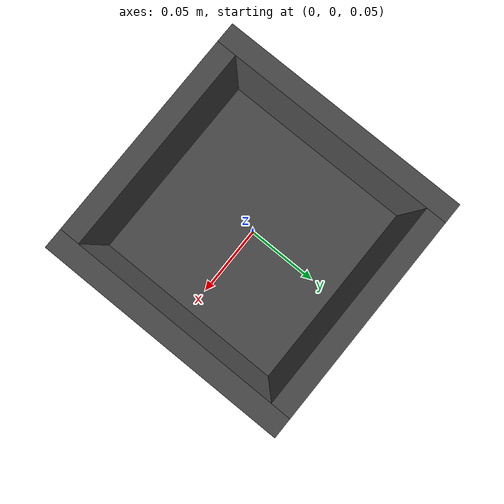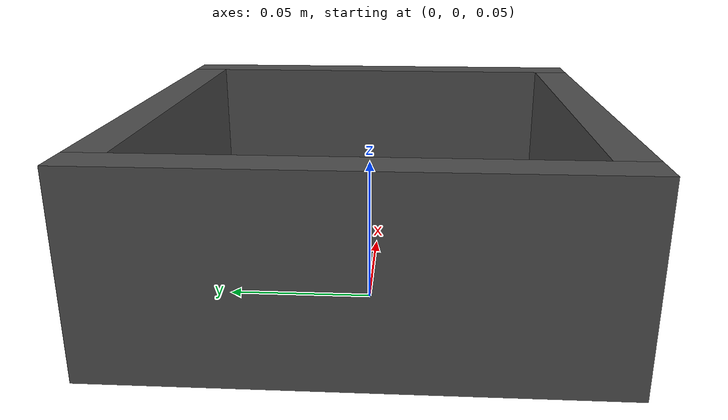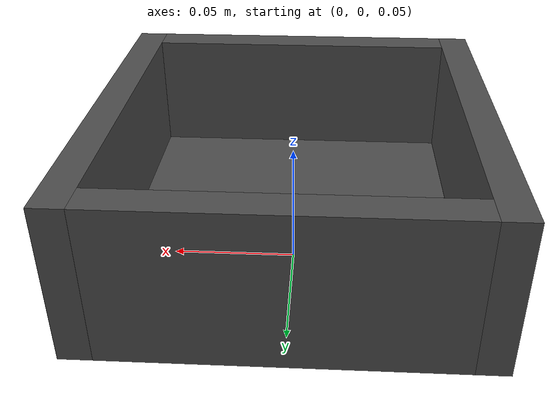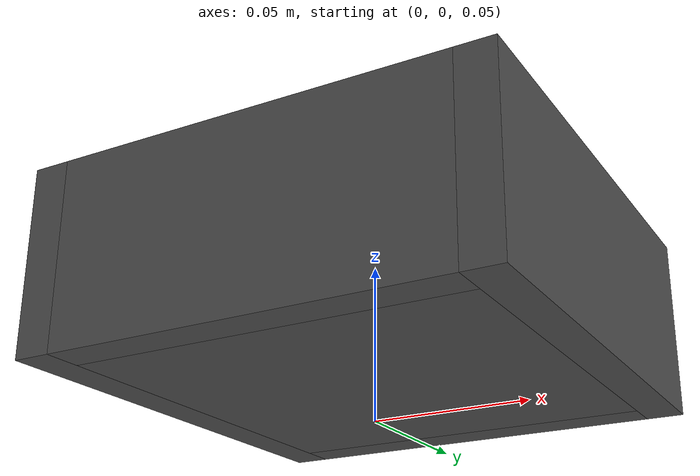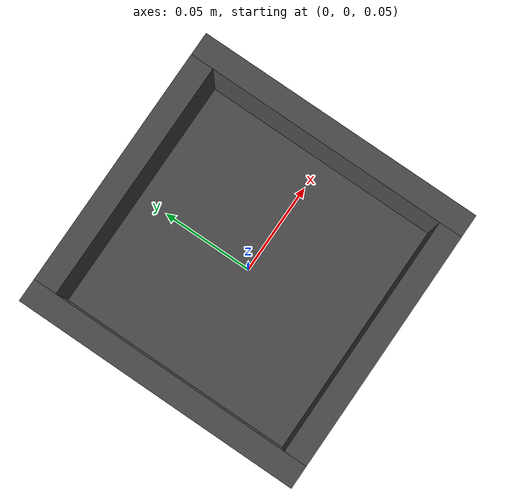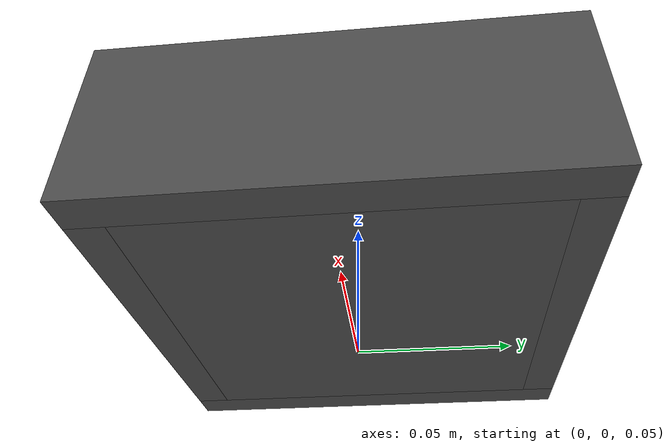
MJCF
<mujoco model="water_tank">
    <include file="../../common.xml"/>
    <worldbody>
        <body name="object_entity" pos="0.0 0.0 0.06">
            <joint name="OBJTx" pos="0 0 0" axis="1 0 0" type="slide" class="freejoint" />
            <joint name="OBJTy" pos="0 0 0" axis="0 1 0" type="slide" class="freejoint" />
            <joint name="OBJTz" pos="0 0 0" axis="0 0 1" type="slide" class="freejoint" />
            <joint name="OBJRx" pos="0 0 0" axis="1 0 0" class="freejoint" />
            <joint name="OBJRy" pos="0 0 0" axis="0 1 0" class="freejoint" />
            <joint name="OBJRz" pos="0 0 0" axis="0 0 1" class="freejoint" />
            <geom type="box" name="entity_visual0" class="object_visual" pos="0 0 0.006" size="0.063 0.063 0.006" rgba="0.3 0.3 0.3 1" />
            <geom type="box" name="entity_contact0" class="object_contact" pos="0 0 0.006" size="0.075 0.075 0.024" mass="0.5" />
            <geom type="box" name="entity_visual1" class="object_visual" pos="0.06899999999999999 0 0.03" size="0.006 0.075 0.03" rgba="0.3 0.3 0.3 1" />
            <geom type="box" name="entity_contact1" class="object_contact" pos="0.06899999999999999 0 0.03" size="0.024 0.075 0.03" mass="0.5" />
            <geom type="box" name="entity_visual2" class="object_visual" pos="0 0.06899999999999999 0.03" size="0.063 0.006 0.03" rgba="0.3 0.3 0.3 1" />
            <geom type="box" name="entity_contact2" class="object_contact" pos="0 0.06899999999999999 0.03" size="0.075 0.024 0.03" mass="0.5" />
            <geom type="box" name="entity_visual3" class="object_visual" pos="-0.06899999999999999 0 0.03" size="0.006 0.075 0.03" rgba="0.3 0.3 0.3 1" />
            <geom type="box" name="entity_contact3" class="object_contact" pos="-0.06899999999999999 0 0.03" size="0.024 0.075 0.03" mass="0.5" />
            <geom type="box" name="entity_visual4" class="object_visual" pos="0 -0.06899999999999999 0.03" size="0.063 0.006 0.03" rgba="0.3 0.3 0.3 1" />
            <geom type="box" name="entity_contact4" class="object_contact" pos="0 -0.06899999999999999 0.03" size="0.075 0.024 0.03" mass="0.5" />
        </body>
    </worldbody>
</mujoco>

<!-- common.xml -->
<mujoco>
    <compiler angle="radian" />

    <asset>
        <material name="MatObject" specular="0.75" shininess="0.1" reflectance="0.5" rgba="1.0 1.0 1.0 1" />
    </asset>

    <default>
        <joint limited="true" margin="0.01" armature="0.001" damping="0.05" frictionloss="0.001" />
        <geom friction="1 0.5 0.01" margin="0.0005" density="1250" />
        <site size="0.005 0 0" rgba="0.4 0.9 0.4 1" />
        <general ctrllimited="true" ctrlrange="-1 1" />
        <tendon limited="true" />

	<default class="object_visual">
	    <geom type="mesh" contype="0" conaffinity="0" mass="0" group="1" material="MatObject" />
	</default>

	<default class="object_contact">
	    <geom type="mesh" density="1250" condim="4" rgba="0 0 1 0" margin="0.003" solref="-6000 -300" />
	</default>

        <default class="freejoint">
            <joint limited="false" damping="0.0" />
        </default>
    </default>

    <visual>
        <!-- free camera attributes -->
        <global fovy="25" />
    </visual>
</mujoco>
